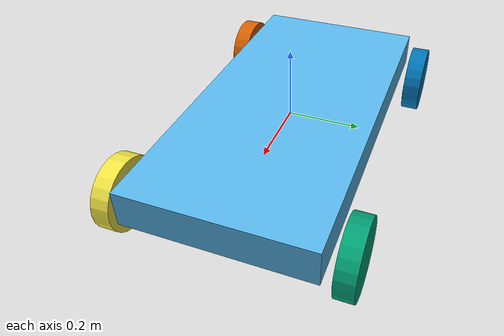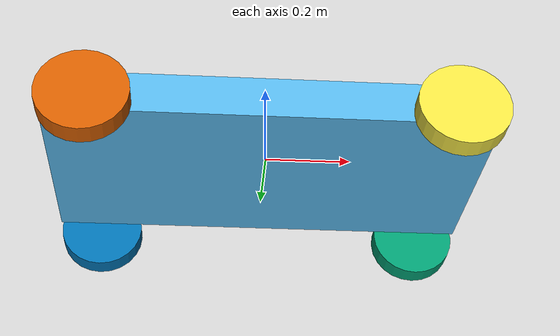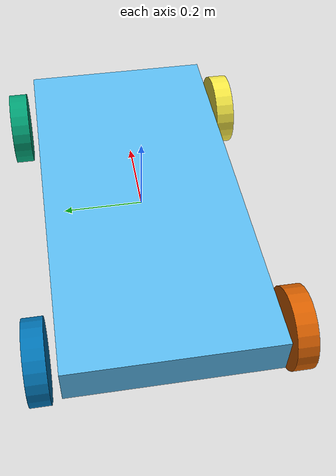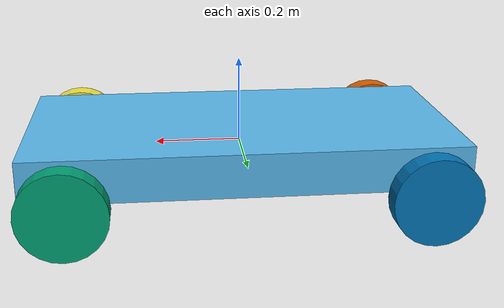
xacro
<?xml version="1.0"?>
<robot name="robot" xmlns:xacro="http://ros.org/wiki/xacro">

    <link name="base_link_dummy">
    </link>

    <link name="body">
        <inertial>
            <mass value="1"/>
            <origin xyz="0 0 0"/>
            <inertia ixx=".1" ixy="0" ixz="0" iyy=".1" iyz="0" izz=".1" />
        </inertial>
        <visual>
            <origin xyz="0 0 0" rpy="0 0 0" />
            <geometry>
                <box size="1 0.5 0.1"/>
            </geometry>
        </visual>
        <collision>
            <origin xyz="0 0 0" rpy="0 0 0" />
            <geometry>
                <box size="1 0.5 0.1"/>
            </geometry>
        </collision>
    </link>

    <joint name="dummy_to_base_joint" type="fixed">
      <parent link="base_link_dummy"/>
      <child link="body"/>
      <origin xyz="0 0 0" rpy="0 0 0"/>
    </joint>

<!-- FRONT LEFT -->
    <link name="front_left_wheel">
        <inertial>
            <mass value="1"/>
            <inertia ixx=".1" ixy="0" ixz="0" iyy=".1" iyz="0" izz=".1" />
        </inertial>
        <collision>
            <origin xyz="0 0 0.05" rpy="0 0 0"/>
            <geometry>
                <cylinder radius="0.1" length="0.05"/>
            </geometry>
        </collision>
        <visual>
            <origin xyz="0 0 0.05" rpy="0 0 0"/>
            <geometry>
                <cylinder radius="0.1" length="0.05"/>
            </geometry>
        </visual>
    </link>

<!-- FRONT RIGHT -->
    <link name="front_right_wheel">
        <inertial>
            <mass value="1"/>
            <inertia ixx=".1" ixy="0" ixz="0" iyy=".1" iyz="0" izz=".1" />
        </inertial>
        <collision>
            <origin xyz="0 0 0.05" rpy="0 0 0"/>
            <geometry>
                <cylinder radius="0.1" length="0.05"/>
            </geometry>
        </collision>
        <visual>
            <origin xyz="0 0 0.05" rpy="0 0 0"/>
            <geometry>
                <cylinder radius="0.1" length="0.05"/>
            </geometry>
        </visual>
    </link>

<!-- BACK LEFT -->
    <link name="back_left_wheel">
        <inertial>
            <mass value="1"/>
            <inertia ixx=".1" ixy="0" ixz="0" iyy=".1" iyz="0" izz=".1" />
        </inertial>
        <collision>
            <origin xyz="0 0 0.05" rpy="0 0 0"/>
            <geometry>
                <cylinder radius="0.1" length="0.05"/>
            </geometry>
        </collision>
        <visual>
            <origin xyz="0 0 0.05" rpy="0 0 0"/>
            <geometry>
                <cylinder radius="0.1" length="0.05"/>
            </geometry>
        </visual>
    </link>

<!-- BACK RIGHT -->
    <link name="back_right_wheel">
        <inertial>
            <mass value="1"/>
            <inertia ixx=".1" ixy="0" ixz="0" iyy=".1" iyz="0" izz=".1" />
        </inertial>
        <collision>
            <origin xyz="0 0 0.05" rpy="0 0 0"/>
            <geometry>
                <cylinder radius="0.1" length="0.05"/>
            </geometry>
        </collision>
        <visual>
            <origin xyz="0 0 0.05" rpy="0 0 0"/>
            <geometry>
                <cylinder radius="0.1" length="0.05"/>
            </geometry>
        </visual>
    </link>

    <joint name="body_to_front_left_wheel" type="continuous">
        <origin xyz="0.4 0.25 -0.05" rpy="${-pi/2} 0 0"/>
        <parent link="body"/>
        <child link="front_left_wheel"/>
        <axis xyz="0 0 1"/>
    </joint>

    <joint name="body_to_front_right_wheel" type="continuous">
        <origin xyz="0.4 -0.25 -0.05" rpy="${pi/2} 0 0"/>
        <parent link="body"/>
        <child link="front_right_wheel"/>
        <axis xyz="0 0 -1"/>
    </joint>

    <joint name="body_to_back_left_wheel" type="continuous">
        <origin xyz="-0.4 0.25 -0.05" rpy="${-pi/2} 0 0"/>
        <parent link="body"/>
        <child link="back_left_wheel"/>
        <axis xyz="0 0 1"/>
    </joint>

    <joint name="body_to_back_right_wheel" type="continuous">
        <origin xyz="-0.4 -0.25 -0.05" rpy="${pi/2} 0 0"/>
        <parent link="body"/>
        <child link="back_right_wheel"/>
        <axis xyz="0 0 -1"/>
    </joint>
</robot>
